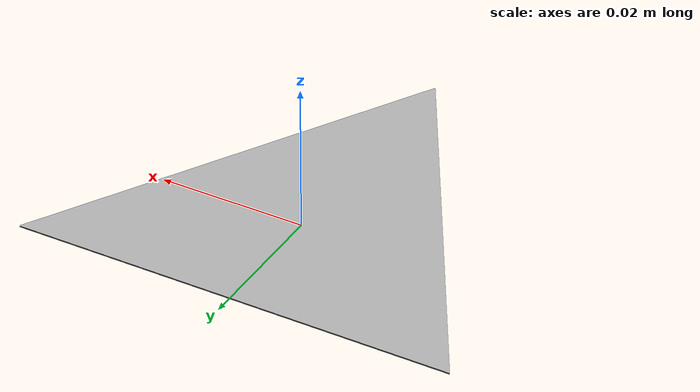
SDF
<?xml version="1.0"?>
<sdf version='1.4'>
    <model name="give_way">
        <static>1</static>
        <link name="link_1">
            <visual name='visual'>
                <pose frame=''>0 0 0 0 0 0</pose>
                <geometry>
                    <mesh>
                        <uri>model://give_way/meshes/give_way.dae</uri>
                    </mesh>
                </geometry>
            </visual>
        </link>
    </model>
</sdf>
